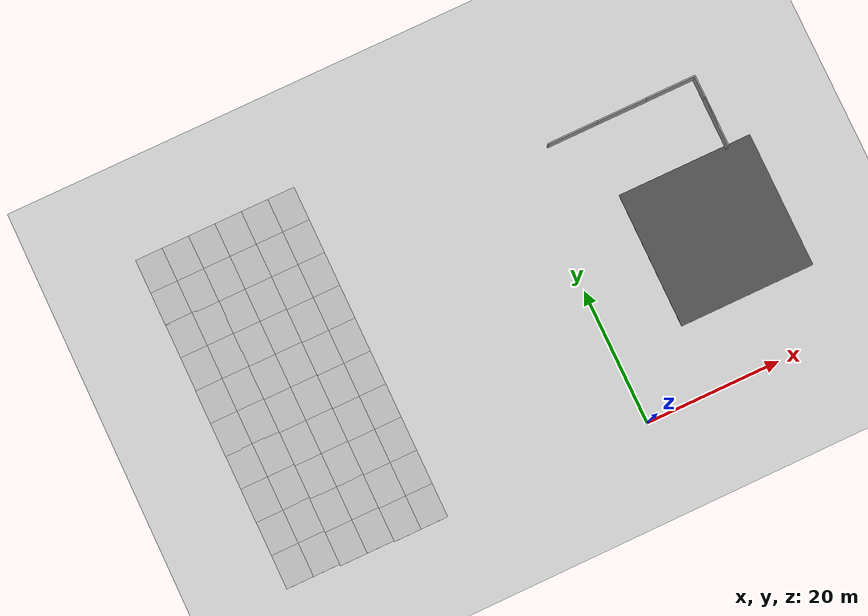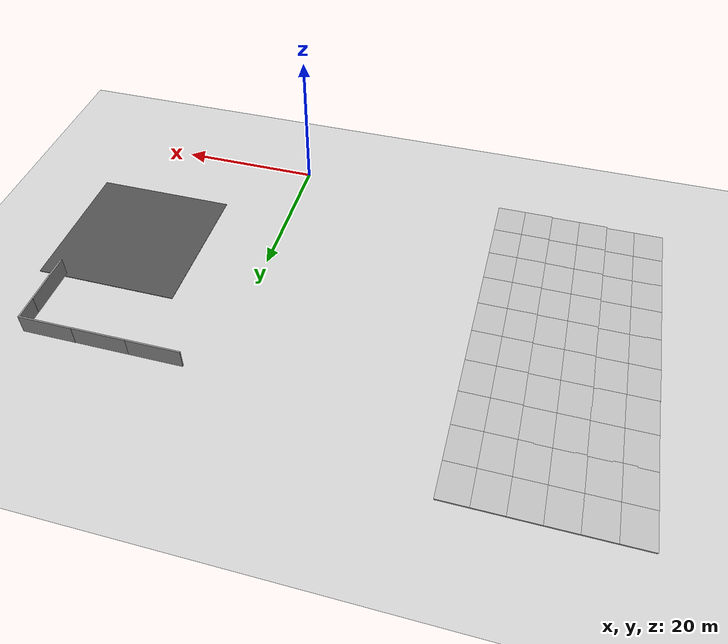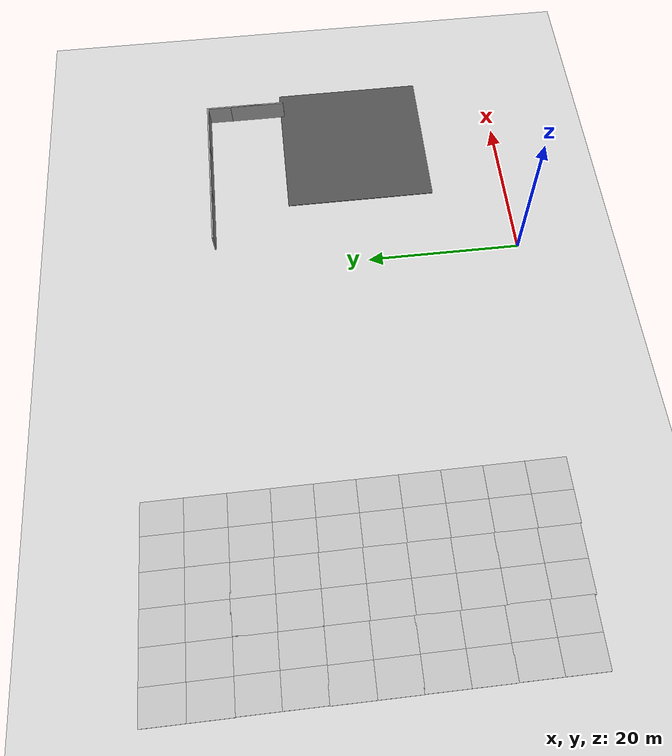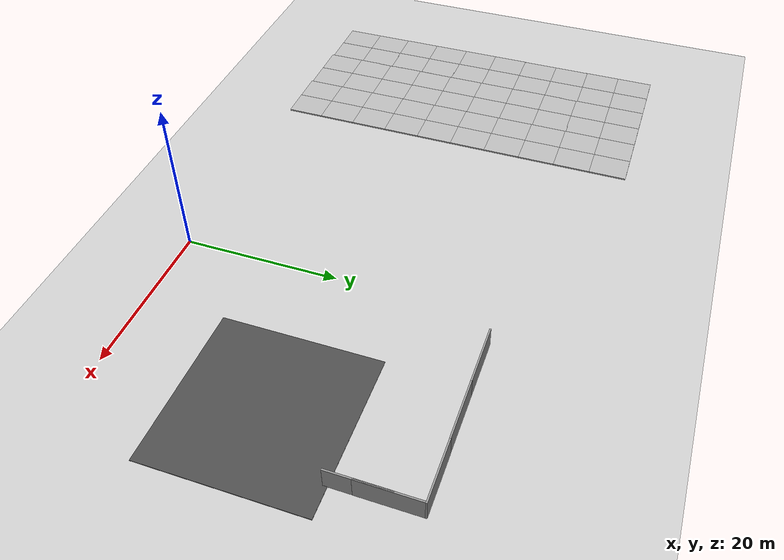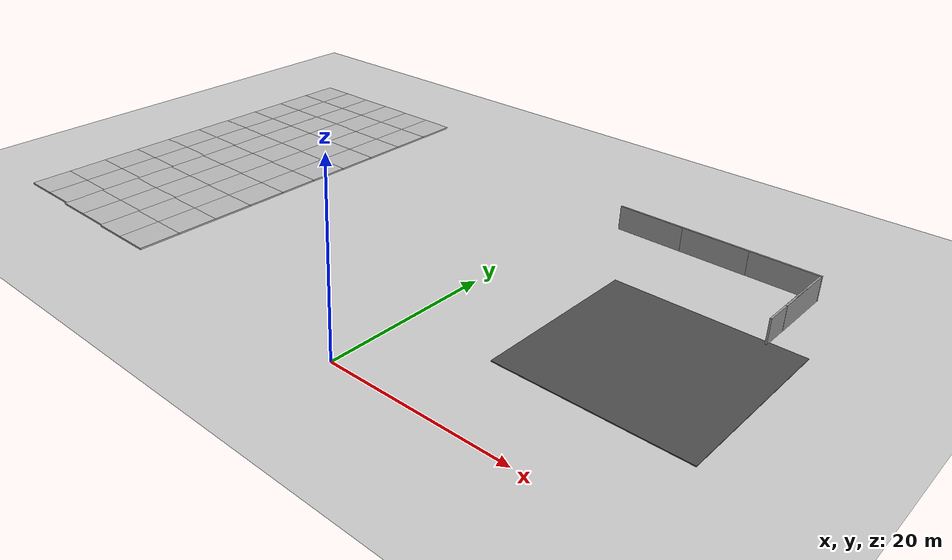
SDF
<sdf version="1.6">
 <world name="default">
  <model name="ground_plane">
   <static>1</static>
   <link name="link">
    <collision name="collision">
     <geometry><plane><normal>0 0 1</normal><size>100 100</size></plane></geometry>
     <surface><friction><ode><mu>100</mu><mu2>50</mu2></ode></friction></surface>
    </collision>
    <visual name="visual">
     <cast_shadows>0</cast_shadows>
     <geometry><plane><normal>0 0 1</normal><size>100 100</size></plane></geometry>
     <material>
      <script><uri>file://media/materials/scripts/gazebo.material</uri><name>Gazebo/Grey</name></script>
     </material>
    </visual>
   </link>
  </model>
  <model name="asphalt_plane_7">
   <static>1</static>
   <link name="link">
    <collision name="collision"><geometry><box><size>20 20 0.1</size></box></geometry></collision>
    <visual name="visual">
     <cast_shadows>0</cast_shadows>
     <geometry><box><size>20 20 0.1</size></box></geometry>
     <material>
      <script>
       <uri>model://asphalt_plane/materials/scripts</uri>
       <uri>model://asphalt_plane/materials/textures</uri>
       <name>vrc/asphalt</name>
      </script>
     </material>
    </visual>
   </link>
   <pose>20 20 0 0 -0 0</pose>
  </model>
  <model name="grey_wall">
   <static>1</static>
   <link name="link">
    <pose>0 0 1.4 0 -0 0</pose>
    <collision name="collision"><geometry><box><size>7.5 0.2 2.8</size></box></geometry></collision>
    <visual name="visual">
     <cast_shadows>0</cast_shadows>
     <geometry><box><size>7.5 0.2 2.8</size></box></geometry>
     <material>
      <script>
       <uri>model://grey_wall/materials/scripts</uri>
       <uri>model://grey_wall/materials/textures</uri>
       <name>vrc/grey_wall</name>
      </script>
     </material>
    </visual>
   </link>
   <pose>7.6762 40.2031 0 0 -0 0</pose>
  </model>
  <model name="grey_wall_0">
   <static>1</static>
   <link name="link">
    <pose>0 0 1.4 0 -0 0</pose>
    <collision name="collision"><geometry><box><size>7.5 0.2 2.8</size></box></geometry></collision>
    <visual name="visual">
     <cast_shadows>0</cast_shadows>
     <geometry><box><size>7.5 0.2 2.8</size></box></geometry>
     <material>
      <script>
       <uri>model://grey_wall/materials/scripts</uri>
       <uri>model://grey_wall/materials/textures</uri>
       <name>vrc/grey_wall</name>
      </script>
     </material>
    </visual>
   </link>
   <pose>15.124 40.2048 0 0 -0 0</pose>
  </model>
  <model name="grey_wall_1">
   <static>1</static>
   <link name="link">
    <pose>0 0 1.4 0 -0 0</pose>
    <collision name="collision"><geometry><box><size>7.5 0.2 2.8</size></box></geometry></collision>
    <visual name="visual">
     <cast_shadows>0</cast_shadows>
     <geometry><box><size>7.5 0.2 2.8</size></box></geometry>
     <material>
      <script>
       <uri>model://grey_wall/materials/scripts</uri>
       <uri>model://grey_wall/materials/textures</uri>
       <name>vrc/grey_wall</name>
      </script>
     </material>
    </visual>
   </link>
   <pose>22.5836 40.2226 0 0 -0 0</pose>
  </model>
  <model name="grey_wall_1_clone">
   <static>1</static>
   <link name="link">
    <pose>0 0 1.4 0 -0 0</pose>
    <collision name="collision"><geometry><box><size>7.5 0.2 2.8</size></box></geometry></collision>
    <visual name="visual">
     <cast_shadows>0</cast_shadows>
     <geometry><box><size>7.5 0.2 2.8</size></box></geometry>
     <material>
      <script>
       <uri>model://grey_wall/materials/scripts</uri>
       <uri>model://grey_wall/materials/textures</uri>
       <name>vrc/grey_wall</name>
      </script>
     </material>
    </visual>
   </link>
   <pose>26.2203 36.3784 0 0 -0 1.57</pose>
  </model>
  <model name="grey_wall_1_clone_clone">
   <static>1</static>
   <link name="link">
    <pose>0 0 1.4 0 -0 0</pose>
    <collision name="collision"><geometry><box><size>7.5 0.2 2.8</size></box></geometry></collision>
    <visual name="visual">
     <cast_shadows>0</cast_shadows>
     <geometry><box><size>7.5 0.2 2.8</size></box></geometry>
     <material>
      <script>
       <uri>model://grey_wall/materials/scripts</uri>
       <uri>model://grey_wall/materials/textures</uri>
       <name>vrc/grey_wall</name>
      </script>
     </material>
    </visual>
   </link>
   <pose>26.2008 33.2346 0 0 -0 1.57</pose>
  </model>
  <model name="mud_box_26">
   <static>1</static>
   <link name="link">
    <collision name="collision"><geometry><box><size>8 10 0.2</size></box></geometry></collision>
    <visual name="visual_1">
     <pose>-2 2.5 0 0 -0 0</pose>
     <cast_shadows>0</cast_shadows>
     <geometry><box><size>4 5 0.2</size></box></geometry>
     <material>
      <script>
       <uri>model://mud_box/materials/scripts</uri>
       <uri>model://mud_box/materials/textures</uri>
       <name>vrc/mud</name>
      </script>
     </material>
    </visual>
    <visual name="visual_2">
     <pose>2 2.5 0 0 -0 0</pose>
     <cast_shadows>0</cast_shadows>
     <geometry><box><size>4 5 0.2</size></box></geometry>
     <material>
      <script>
       <uri>model://mud_box/materials/scripts</uri>
       <uri>model://mud_box/materials/textures</uri>
       <name>vrc/mud</name>
      </script>
     </material>
    </visual>
    <visual name="visual_3">
     <pose>2 -2.5 0 0 -0 0</pose>
     <cast_shadows>0</cast_shadows>
     <geometry><box><size>4 5 0.2</size></box></geometry>
     <material>
      <script>
       <uri>model://mud_box/materials/scripts</uri>
       <uri>model://mud_box/materials/textures</uri>
       <name>vrc/mud</name>
      </script>
     </material>
    </visual>
    <visual name="visual_4">
     <pose>-2 -2.5 0 0 -0 0</pose>
     <cast_shadows>0</cast_shadows>
     <geometry><box><size>4 5 0.2</size></box></geometry>
     <material>
      <script>
       <uri>model://mud_box/materials/scripts</uri>
       <uri>model://mud_box/materials/textures</uri>
       <name>vrc/mud</name>
      </script>
     </material>
    </visual>
   </link>
   <pose>-34 45 0 0 -0 0</pose>
  </model>
  <model name="mud_box_26_clone">
   <static>1</static>
   <link name="link">
    <collision name="collision"><geometry><box><size>8 10 0.2</size></box></geometry></collision>
    <visual name="visual_1">
     <pose>-2 2.5 0 0 -0 0</pose>
     <cast_shadows>0</cast_shadows>
     <geometry><box><size>4 5 0.2</size></box></geometry>
     <material>
      <script>
       <uri>model://mud_box/materials/scripts</uri>
       <uri>model://mud_box/materials/textures</uri>
       <name>vrc/mud</name>
      </script>
     </material>
    </visual>
    <visual name="visual_2">
     <pose>2 2.5 0 0 -0 0</pose>
     <cast_shadows>0</cast_shadows>
     <geometry><box><size>4 5 0.2</size></box></geometry>
     <material>
      <script>
       <uri>model://mud_box/materials/scripts</uri>
       <uri>model://mud_box/materials/textures</uri>
       <name>vrc/mud</name>
      </script>
     </material>
    </visual>
    <visual name="visual_3">
     <pose>2 -2.5 0 0 -0 0</pose>
     <cast_shadows>0</cast_shadows>
     <geometry><box><size>4 5 0.2</size></box></geometry>
     <material>
      <script>
       <uri>model://mud_box/materials/scripts</uri>
       <uri>model://mud_box/materials/textures</uri>
       <name>vrc/mud</name>
      </script>
     </material>
    </visual>
    <visual name="visual_4">
     <pose>-2 -2.5 0 0 -0 0</pose>
     <cast_shadows>0</cast_shadows>
     <geometry><box><size>4 5 0.2</size></box></geometry>
     <material>
      <script>
       <uri>model://mud_box/materials/scripts</uri>
       <uri>model://mud_box/materials/textures</uri>
       <name>vrc/mud</name>
      </script>
     </material>
    </visual>
   </link>
   <pose>-34.0008 35.0008 0 0 -0 0</pose>
  </model>
  <model name="mud_box_26_clone_clone">
   <static>1</static>
   <link name="link">
    <collision name="collision"><geometry><box><size>8 10 0.2</size></box></geometry></collision>
    <visual name="visual_1">
     <pose>-2 2.5 0 0 -0 0</pose>
     <cast_shadows>0</cast_shadows>
     <geometry><box><size>4 5 0.2</size></box></geometry>
     <material>
      <script>
       <uri>model://mud_box/materials/scripts</uri>
       <uri>model://mud_box/materials/textures</uri>
       <name>vrc/mud</name>
      </script>
     </material>
    </visual>
    <visual name="visual_2">
     <pose>2 2.5 0 0 -0 0</pose>
     <cast_shadows>0</cast_shadows>
     <geometry><box><size>4 5 0.2</size></box></geometry>
     <material>
      <script>
       <uri>model://mud_box/materials/scripts</uri>
       <uri>model://mud_box/materials/textures</uri>
       <name>vrc/mud</name>
      </script>
     </material>
    </visual>
    <visual name="visual_3">
     <pose>2 -2.5 0 0 -0 0</pose>
     <cast_shadows>0</cast_shadows>
     <geometry><box><size>4 5 0.2</size></box></geometry>
     <material>
      <script>
       <uri>model://mud_box/materials/scripts</uri>
       <uri>model://mud_box/materials/textures</uri>
       <name>vrc/mud</name>
      </script>
     </material>
    </visual>
    <visual name="visual_4">
     <pose>-2 -2.5 0 0 -0 0</pose>
     <cast_shadows>0</cast_shadows>
     <geometry><box><size>4 5 0.2</size></box></geometry>
     <material>
      <script>
       <uri>model://mud_box/materials/scripts</uri>
       <uri>model://mud_box/materials/textures</uri>
       <name>vrc/mud</name>
      </script>
     </material>
    </visual>
   </link>
   <pose>-34.0042 25.0143 0 0 -0 0</pose>
  </model>
  <model name="mud_box_26_clone_clone_clone">
   <static>1</static>
   <link name="link">
    <collision name="collision"><geometry><box><size>8 10 0.2</size></box></geometry></collision>
    <visual name="visual_1">
     <pose>-2 2.5 0 0 -0 0</pose>
     <cast_shadows>0</cast_shadows>
     <geometry><box><size>4 5 0.2</size></box></geometry>
     <material>
      <script>
       <uri>model://mud_box/materials/scripts</uri>
       <uri>model://mud_box/materials/textures</uri>
       <name>vrc/mud</name>
      </script>
     </material>
    </visual>
    <visual name="visual_2">
     <pose>2 2.5 0 0 -0 0</pose>
     <cast_shadows>0</cast_shadows>
     <geometry><box><size>4 5 0.2</size></box></geometry>
     <material>
      <script>
       <uri>model://mud_box/materials/scripts</uri>
       <uri>model://mud_box/materials/textures</uri>
       <name>vrc/mud</name>
      </script>
     </material>
    </visual>
    <visual name="visual_3">
     <pose>2 -2.5 0 0 -0 0</pose>
     <cast_shadows>0</cast_shadows>
     <geometry><box><size>4 5 0.2</size></box></geometry>
     <material>
      <script>
       <uri>model://mud_box/materials/scripts</uri>
       <uri>model://mud_box/materials/textures</uri>
       <name>vrc/mud</name>
      </script>
     </material>
    </visual>
    <visual name="visual_4">
     <pose>-2 -2.5 0 0 -0 0</pose>
     <cast_shadows>0</cast_shadows>
     <geometry><box><size>4 5 0.2</size></box></geometry>
     <material>
      <script>
       <uri>model://mud_box/materials/scripts</uri>
       <uri>model://mud_box/materials/textures</uri>
       <name>vrc/mud</name>
      </script>
     </material>
    </visual>
   </link>
   <pose>-34.0024 15.028 0 0 -0 0</pose>
  </model>
  <model name="mud_box_26_clone_clone_clone_clone">
   <static>1</static>
   <link name="link">
    <collision name="collision"><geometry><box><size>8 10 0.2</size></box></geometry></collision>
    <visual name="visual_1">
     <pose>-2 2.5 0 0 -0 0</pose>
     <cast_shadows>0</cast_shadows>
     <geometry><box><size>4 5 0.2</size></box></geometry>
     <material>
      <script>
       <uri>model://mud_box/materials/scripts</uri>
       <uri>model://mud_box/materials/textures</uri>
       <name>vrc/mud</name>
      </script>
     </material>
    </visual>
    <visual name="visual_2">
     <pose>2 2.5 0 0 -0 0</pose>
     <cast_shadows>0</cast_shadows>
     <geometry><box><size>4 5 0.2</size></box></geometry>
     <material>
      <script>
       <uri>model://mud_box/materials/scripts</uri>
       <uri>model://mud_box/materials/textures</uri>
       <name>vrc/mud</name>
      </script>
     </material>
    </visual>
    <visual name="visual_3">
     <pose>2 -2.5 0 0 -0 0</pose>
     <cast_shadows>0</cast_shadows>
     <geometry><box><size>4 5 0.2</size></box></geometry>
     <material>
      <script>
       <uri>model://mud_box/materials/scripts</uri>
       <uri>model://mud_box/materials/textures</uri>
       <name>vrc/mud</name>
      </script>
     </material>
    </visual>
    <visual name="visual_4">
     <pose>-2 -2.5 0 0 -0 0</pose>
     <cast_shadows>0</cast_shadows>
     <geometry><box><size>4 5 0.2</size></box></geometry>
     <material>
      <script>
       <uri>model://mud_box/materials/scripts</uri>
       <uri>model://mud_box/materials/textures</uri>
       <name>vrc/mud</name>
      </script>
     </material>
    </visual>
   </link>
   <pose>-34.002 5.03055 0 0 -0 0</pose>
  </model>
  <model name="mud_box_26_clone_clone_clone_clone_2_clone_clone_clone">
   <static>1</static>
   <link name="link">
    <collision name="collision"><geometry><box><size>8 10 0.2</size></box></geometry></collision>
    <visual name="visual_1">
     <pose>-2 2.5 0 0 -0 0</pose>
     <cast_shadows>0</cast_shadows>
     <geometry><box><size>4 5 0.2</size></box></geometry>
     <material>
      <script>
       <uri>model://mud_box/materials/scripts</uri>
       <uri>model://mud_box/materials/textures</uri>
       <name>vrc/mud</name>
      </script>
     </material>
    </visual>
    <visual name="visual_2">
     <pose>2 2.5 0 0 -0 0</pose>
     <cast_shadows>0</cast_shadows>
     <geometry><box><size>4 5 0.2</size></box></geometry>
     <material>
      <script>
       <uri>model://mud_box/materials/scripts</uri>
       <uri>model://mud_box/materials/textures</uri>
       <name>vrc/mud</name>
      </script>
     </material>
    </visual>
    <visual name="visual_3">
     <pose>2 -2.5 0 0 -0 0</pose>
     <cast_shadows>0</cast_shadows>
     <geometry><box><size>4 5 0.2</size></box></geometry>
     <material>
      <script>
       <uri>model://mud_box/materials/scripts</uri>
       <uri>model://mud_box/materials/textures</uri>
       <name>vrc/mud</name>
      </script>
     </material>
    </visual>
    <visual name="visual_4">
     <pose>-2 -2.5 0 0 -0 0</pose>
     <cast_shadows>0</cast_shadows>
     <geometry><box><size>4 5 0.2</size></box></geometry>
     <material>
      <script>
       <uri>model://mud_box/materials/scripts</uri>
       <uri>model://mud_box/materials/textures</uri>
       <name>vrc/mud</name>
      </script>
     </material>
    </visual>
   </link>
   <pose>-41.976 45.0062 0 0 -0 0</pose>
  </model>
  <model name="mud_box_26_clone_clone_clone_clone_2_clone_clone_clone_clone">
   <static>1</static>
   <link name="link">
    <collision name="collision"><geometry><box><size>8 10 0.2</size></box></geometry></collision>
    <visual name="visual_1">
     <pose>-2 2.5 0 0 -0 0</pose>
     <cast_shadows>0</cast_shadows>
     <geometry><box><size>4 5 0.2</size></box></geometry>
     <material>
      <script>
       <uri>model://mud_box/materials/scripts</uri>
       <uri>model://mud_box/materials/textures</uri>
       <name>vrc/mud</name>
      </script>
     </material>
    </visual>
    <visual name="visual_2">
     <pose>2 2.5 0 0 -0 0</pose>
     <cast_shadows>0</cast_shadows>
     <geometry><box><size>4 5 0.2</size></box></geometry>
     <material>
      <script>
       <uri>model://mud_box/materials/scripts</uri>
       <uri>model://mud_box/materials/textures</uri>
       <name>vrc/mud</name>
      </script>
     </material>
    </visual>
    <visual name="visual_3">
     <pose>2 -2.5 0 0 -0 0</pose>
     <cast_shadows>0</cast_shadows>
     <geometry><box><size>4 5 0.2</size></box></geometry>
     <material>
      <script>
       <uri>model://mud_box/materials/scripts</uri>
       <uri>model://mud_box/materials/textures</uri>
       <name>vrc/mud</name>
      </script>
     </material>
    </visual>
    <visual name="visual_4">
     <pose>-2 -2.5 0 0 -0 0</pose>
     <cast_shadows>0</cast_shadows>
     <geometry><box><size>4 5 0.2</size></box></geometry>
     <material>
      <script>
       <uri>model://mud_box/materials/scripts</uri>
       <uri>model://mud_box/materials/textures</uri>
       <name>vrc/mud</name>
      </script>
     </material>
    </visual>
   </link>
   <pose>-41.9871 35.1136 0 0 -0 0</pose>
  </model>
  <model name="mud_box_26_clone_clone_clone_clone_2_clone_clone_clone_clone_clone">
   <static>1</static>
   <link name="link">
    <collision name="collision"><geometry><box><size>8 10 0.2</size></box></geometry></collision>
    <visual name="visual_1">
     <pose>-2 2.5 0 0 -0 0</pose>
     <cast_shadows>0</cast_shadows>
     <geometry><box><size>4 5 0.2</size></box></geometry>
     <material>
      <script>
       <uri>model://mud_box/materials/scripts</uri>
       <uri>model://mud_box/materials/textures</uri>
       <name>vrc/mud</name>
      </script>
     </material>
    </visual>
    <visual name="visual_2">
     <pose>2 2.5 0 0 -0 0</pose>
     <cast_shadows>0</cast_shadows>
     <geometry><box><size>4 5 0.2</size></box></geometry>
     <material>
      <script>
       <uri>model://mud_box/materials/scripts</uri>
       <uri>model://mud_box/materials/textures</uri>
       <name>vrc/mud</name>
      </script>
     </material>
    </visual>
    <visual name="visual_3">
     <pose>2 -2.5 0 0 -0 0</pose>
     <cast_shadows>0</cast_shadows>
     <geometry><box><size>4 5 0.2</size></box></geometry>
     <material>
      <script>
       <uri>model://mud_box/materials/scripts</uri>
       <uri>model://mud_box/materials/textures</uri>
       <name>vrc/mud</name>
      </script>
     </material>
    </visual>
    <visual name="visual_4">
     <pose>-2 -2.5 0 0 -0 0</pose>
     <cast_shadows>0</cast_shadows>
     <geometry><box><size>4 5 0.2</size></box></geometry>
     <material>
      <script>
       <uri>model://mud_box/materials/scripts</uri>
       <uri>model://mud_box/materials/textures</uri>
       <name>vrc/mud</name>
      </script>
     </material>
    </visual>
   </link>
   <pose>-41.9835 25.1141 0 0 -0 0</pose>
  </model>
  <model name="mud_box_26_clone_clone_clone_clone_2_clone_clone_clone_clone_clone_clone">
   <static>1</static>
   <link name="link">
    <collision name="collision"><geometry><box><size>8 10 0.2</size></box></geometry></collision>
    <visual name="visual_1">
     <pose>-2 2.5 0 0 -0 0</pose>
     <cast_shadows>0</cast_shadows>
     <geometry><box><size>4 5 0.2</size></box></geometry>
     <material>
      <script>
       <uri>model://mud_box/materials/scripts</uri>
       <uri>model://mud_box/materials/textures</uri>
       <name>vrc/mud</name>
      </script>
     </material>
    </visual>
    <visual name="visual_2">
     <pose>2 2.5 0 0 -0 0</pose>
     <cast_shadows>0</cast_shadows>
     <geometry><box><size>4 5 0.2</size></box></geometry>
     <material>
      <script>
       <uri>model://mud_box/materials/scripts</uri>
       <uri>model://mud_box/materials/textures</uri>
       <name>vrc/mud</name>
      </script>
     </material>
    </visual>
    <visual name="visual_3">
     <pose>2 -2.5 0 0 -0 0</pose>
     <cast_shadows>0</cast_shadows>
     <geometry><box><size>4 5 0.2</size></box></geometry>
     <material>
      <script>
       <uri>model://mud_box/materials/scripts</uri>
       <uri>model://mud_box/materials/textures</uri>
       <name>vrc/mud</name>
      </script>
     </material>
    </visual>
    <visual name="visual_4">
     <pose>-2 -2.5 0 0 -0 0</pose>
     <cast_shadows>0</cast_shadows>
     <geometry><box><size>4 5 0.2</size></box></geometry>
     <material>
      <script>
       <uri>model://mud_box/materials/scripts</uri>
       <uri>model://mud_box/materials/textures</uri>
       <name>vrc/mud</name>
      </script>
     </material>
    </visual>
   </link>
   <pose>-41.9785 15.116 0 0 -0 0</pose>
  </model>
  <model name="mud_box_26_clone_clone_clone_clone_2_clone_clone_clone_clone_clone_clone_clone">
   <static>1</static>
   <link name="link">
    <collision name="collision"><geometry><box><size>8 10 0.2</size></box></geometry></collision>
    <visual name="visual_1">
     <pose>-2 2.5 0 0 -0 0</pose>
     <cast_shadows>0</cast_shadows>
     <geometry><box><size>4 5 0.2</size></box></geometry>
     <material>
      <script>
       <uri>model://mud_box/materials/scripts</uri>
       <uri>model://mud_box/materials/textures</uri>
       <name>vrc/mud</name>
      </script>
     </material>
    </visual>
    <visual name="visual_2">
     <pose>2 2.5 0 0 -0 0</pose>
     <cast_shadows>0</cast_shadows>
     <geometry><box><size>4 5 0.2</size></box></geometry>
     <material>
      <script>
       <uri>model://mud_box/materials/scripts</uri>
       <uri>model://mud_box/materials/textures</uri>
       <name>vrc/mud</name>
      </script>
     </material>
    </visual>
    <visual name="visual_3">
     <pose>2 -2.5 0 0 -0 0</pose>
     <cast_shadows>0</cast_shadows>
     <geometry><box><size>4 5 0.2</size></box></geometry>
     <material>
      <script>
       <uri>model://mud_box/materials/scripts</uri>
       <uri>model://mud_box/materials/textures</uri>
       <name>vrc/mud</name>
      </script>
     </material>
    </visual>
    <visual name="visual_4">
     <pose>-2 -2.5 0 0 -0 0</pose>
     <cast_shadows>0</cast_shadows>
     <geometry><box><size>4 5 0.2</size></box></geometry>
     <material>
      <script>
       <uri>model://mud_box/materials/scripts</uri>
       <uri>model://mud_box/materials/textures</uri>
       <name>vrc/mud</name>
      </script>
     </material>
    </visual>
   </link>
   <pose>-41.9833 5.17755 0 0 -0 0</pose>
  </model>
  <model name="mud_box_26_clone_clone_clone_clone_2_clone_clone_clone_clone_clone_clone_clone_clone_clone_3">
   <static>1</static>
   <link name="link">
    <collision name="collision"><geometry><box><size>8 10 0.2</size></box></geometry></collision>
    <visual name="visual_1">
     <pose>-2 2.5 0 0 -0 0</pose>
     <cast_shadows>0</cast_shadows>
     <geometry><box><size>4 5 0.2</size></box></geometry>
     <material>
      <script>
       <uri>model://mud_box/materials/scripts</uri>
       <uri>model://mud_box/materials/textures</uri>
       <name>vrc/mud</name>
      </script>
     </material>
    </visual>
    <visual name="visual_2">
     <pose>2 2.5 0 0 -0 0</pose>
     <cast_shadows>0</cast_shadows>
     <geometry><box><size>4 5 0.2</size></box></geometry>
     <material>
      <script>
       <uri>model://mud_box/materials/scripts</uri>
       <uri>model://mud_box/materials/textures</uri>
       <name>vrc/mud</name>
      </script>
     </material>
    </visual>
    <visual name="visual_3">
     <pose>2 -2.5 0 0 -0 0</pose>
     <cast_shadows>0</cast_shadows>
     <geometry><box><size>4 5 0.2</size></box></geometry>
     <material>
      <script>
       <uri>model://mud_box/materials/scripts</uri>
       <uri>model://mud_box/materials/textures</uri>
       <name>vrc/mud</name>
      </script>
     </material>
    </visual>
    <visual name="visual_4">
     <pose>-2 -2.5 0 0 -0 0</pose>
     <cast_shadows>0</cast_shadows>
     <geometry><box><size>4 5 0.2</size></box></geometry>
     <material>
      <script>
       <uri>model://mud_box/materials/scripts</uri>
       <uri>model://mud_box/materials/textures</uri>
       <name>vrc/mud</name>
      </script>
     </material>
    </visual>
   </link>
   <pose>-49.9422 45.0023 0 0 -0 0</pose>
  </model>
  <model name="mud_box_26_clone_clone_clone_clone_2_clone_clone_clone_clone_clone_clone_clone_clone_clone_4">
   <static>1</static>
   <link name="link">
    <collision name="collision"><geometry><box><size>8 10 0.2</size></box></geometry></collision>
    <visual name="visual_1">
     <pose>-2 2.5 0 0 -0 0</pose>
     <cast_shadows>0</cast_shadows>
     <geometry><box><size>4 5 0.2</size></box></geometry>
     <material>
      <script>
       <uri>model://mud_box/materials/scripts</uri>
       <uri>model://mud_box/materials/textures</uri>
       <name>vrc/mud</name>
      </script>
     </material>
    </visual>
    <visual name="visual_2">
     <pose>2 2.5 0 0 -0 0</pose>
     <cast_shadows>0</cast_shadows>
     <geometry><box><size>4 5 0.2</size></box></geometry>
     <material>
      <script>
       <uri>model://mud_box/materials/scripts</uri>
       <uri>model://mud_box/materials/textures</uri>
       <name>vrc/mud</name>
      </script>
     </material>
    </visual>
    <visual name="visual_3">
     <pose>2 -2.5 0 0 -0 0</pose>
     <cast_shadows>0</cast_shadows>
     <geometry><box><size>4 5 0.2</size></box></geometry>
     <material>
      <script>
       <uri>model://mud_box/materials/scripts</uri>
       <uri>model://mud_box/materials/textures</uri>
       <name>vrc/mud</name>
      </script>
     </material>
    </visual>
    <visual name="visual_4">
     <pose>-2 -2.5 0 0 -0 0</pose>
     <cast_shadows>0</cast_shadows>
     <geometry><box><size>4 5 0.2</size></box></geometry>
     <material>
      <script>
       <uri>model://mud_box/materials/scripts</uri>
       <uri>model://mud_box/materials/textures</uri>
       <name>vrc/mud</name>
      </script>
     </material>
    </visual>
   </link>
   <pose>-49.9033 35.1609 0 0 -0 0</pose>
  </model>
  <model name="mud_box_26_clone_clone_clone_clone_2_clone_clone_clone_clone_clone_clone_clone_clone_clone_5">
   <static>1</static>
   <link name="link">
    <collision name="collision"><geometry><box><size>8 10 0.2</size></box></geometry></collision>
    <visual name="visual_1">
     <pose>-2 2.5 0 0 -0 0</pose>
     <cast_shadows>0</cast_shadows>
     <geometry><box><size>4 5 0.2</size></box></geometry>
     <material>
      <script>
       <uri>model://mud_box/materials/scripts</uri>
       <uri>model://mud_box/materials/textures</uri>
       <name>vrc/mud</name>
      </script>
     </material>
    </visual>
    <visual name="visual_2">
     <pose>2 2.5 0 0 -0 0</pose>
     <cast_shadows>0</cast_shadows>
     <geometry><box><size>4 5 0.2</size></box></geometry>
     <material>
      <script>
       <uri>model://mud_box/materials/scripts</uri>
       <uri>model://mud_box/materials/textures</uri>
       <name>vrc/mud</name>
      </script>
     </material>
    </visual>
    <visual name="visual_3">
     <pose>2 -2.5 0 0 -0 0</pose>
     <cast_shadows>0</cast_shadows>
     <geometry><box><size>4 5 0.2</size></box></geometry>
     <material>
      <script>
       <uri>model://mud_box/materials/scripts</uri>
       <uri>model://mud_box/materials/textures</uri>
       <name>vrc/mud</name>
      </script>
     </material>
    </visual>
    <visual name="visual_4">
     <pose>-2 -2.5 0 0 -0 0</pose>
     <cast_shadows>0</cast_shadows>
     <geometry><box><size>4 5 0.2</size></box></geometry>
     <material>
      <script>
       <uri>model://mud_box/materials/scripts</uri>
       <uri>model://mud_box/materials/textures</uri>
       <name>vrc/mud</name>
      </script>
     </material>
    </visual>
   </link>
   <pose>-49.9485 25.2576 0 0 -0 0</pose>
  </model>
  <model name="mud_box_26_clone_clone_clone_clone_2_clone_clone_clone_clone_clone_clone_clone_clone_clone_6">
   <static>1</static>
   <link name="link">
    <collision name="collision"><geometry><box><size>8 10 0.2</size></box></geometry></collision>
    <visual name="visual_1">
     <pose>-2 2.5 0 0 -0 0</pose>
     <cast_shadows>0</cast_shadows>
     <geometry><box><size>4 5 0.2</size></box></geometry>
     <material>
      <script>
       <uri>model://mud_box/materials/scripts</uri>
       <uri>model://mud_box/materials/textures</uri>
       <name>vrc/mud</name>
      </script>
     </material>
    </visual>
    <visual name="visual_2">
     <pose>2 2.5 0 0 -0 0</pose>
     <cast_shadows>0</cast_shadows>
     <geometry><box><size>4 5 0.2</size></box></geometry>
     <material>
      <script>
       <uri>model://mud_box/materials/scripts</uri>
       <uri>model://mud_box/materials/textures</uri>
       <name>vrc/mud</name>
      </script>
     </material>
    </visual>
    <visual name="visual_3">
     <pose>2 -2.5 0 0 -0 0</pose>
     <cast_shadows>0</cast_shadows>
     <geometry><box><size>4 5 0.2</size></box></geometry>
     <material>
      <script>
       <uri>model://mud_box/materials/scripts</uri>
       <uri>model://mud_box/materials/textures</uri>
       <name>vrc/mud</name>
      </script>
     </material>
    </visual>
    <visual name="visual_4">
     <pose>-2 -2.5 0 0 -0 0</pose>
     <cast_shadows>0</cast_shadows>
     <geometry><box><size>4 5 0.2</size></box></geometry>
     <material>
      <script>
       <uri>model://mud_box/materials/scripts</uri>
       <uri>model://mud_box/materials/textures</uri>
       <name>vrc/mud</name>
      </script>
     </material>
    </visual>
   </link>
   <pose>-49.9264 15.3542 0 0 -0 0</pose>
  </model>
  <model name="mud_box_26_clone_clone_clone_clone_2_clone_clone_clone_clone_clone_clone_clone_clone_clone_7">
   <static>1</static>
   <link name="link">
    <collision name="collision"><geometry><box><size>8 10 0.2</size></box></geometry></collision>
    <visual name="visual_1">
     <pose>-2 2.5 0 0 -0 0</pose>
     <cast_shadows>0</cast_shadows>
     <geometry><box><size>4 5 0.2</size></box></geometry>
     <material>
      <script>
       <uri>model://mud_box/materials/scripts</uri>
       <uri>model://mud_box/materials/textures</uri>
       <name>vrc/mud</name>
      </script>
     </material>
    </visual>
    <visual name="visual_2">
     <pose>2 2.5 0 0 -0 0</pose>
     <cast_shadows>0</cast_shadows>
     <geometry><box><size>4 5 0.2</size></box></geometry>
     <material>
      <script>
       <uri>model://mud_box/materials/scripts</uri>
       <uri>model://mud_box/materials/textures</uri>
       <name>vrc/mud</name>
      </script>
     </material>
    </visual>
    <visual name="visual_3">
     <pose>2 -2.5 0 0 -0 0</pose>
     <cast_shadows>0</cast_shadows>
     <geometry><box><size>4 5 0.2</size></box></geometry>
     <material>
      <script>
       <uri>model://mud_box/materials/scripts</uri>
       <uri>model://mud_box/materials/textures</uri>
       <name>vrc/mud</name>
      </script>
     </material>
    </visual>
    <visual name="visual_4">
     <pose>-2 -2.5 0 0 -0 0</pose>
     <cast_shadows>0</cast_shadows>
     <geometry><box><size>4 5 0.2</size></box></geometry>
     <material>
      <script>
       <uri>model://mud_box/materials/scripts</uri>
       <uri>model://mud_box/materials/textures</uri>
       <name>vrc/mud</name>
      </script>
     </material>
    </visual>
   </link>
   <pose>-49.8966 5.42143 0 0 -0 0</pose>
  </model>
 </world>
</sdf>
